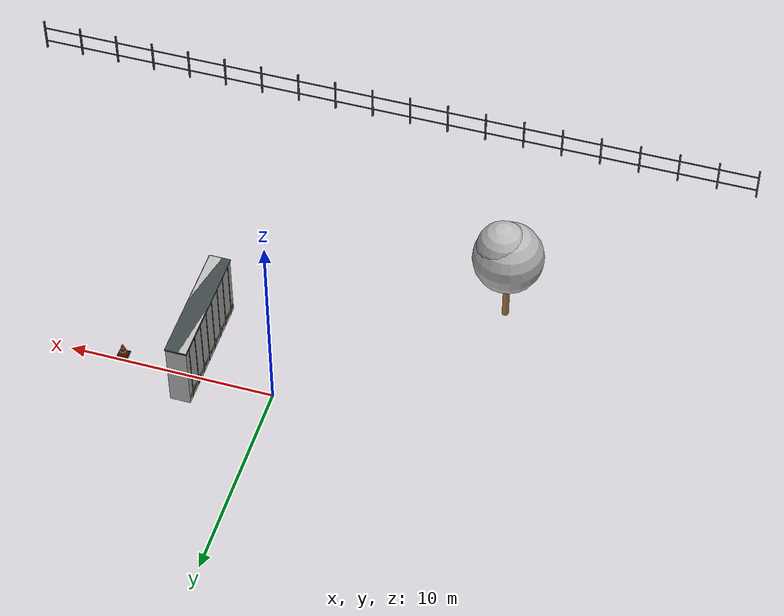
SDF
<sdf version="1.5">
 <world name="default">
  <include><uri>model://sun</uri></include>
  <model name="traffic_cone_1">
   <static>true</static>
   <pose>7.5 -0.3 0.003 0 0 0.0</pose>
   <link name="structure">
    <visual name="rubber_base">
     <pose>0 0 0.0325 0 0 0</pose>
     <geometry><box><size>0.54 0.54 0.065</size></box></geometry>
     <material>
      <ambient>0.07 0.07 0.065 1</ambient>
      <diffuse>0.07 0.07 0.065 1</diffuse>
      <specular>0.04 0.04 0.04 1</specular>
     </material>
    </visual>
    <collision name="rubber_base_collision">
     <pose>0 0 0.0325 0 0 0</pose>
     <geometry><box><size>0.54 0.54 0.065</size></box></geometry>
     <surface><friction><ode><mu>1.0</mu><mu2>1.0</mu2></ode></friction></surface>
    </collision>
    <visual name="cone_slice_0">
     <pose>0 0 0.09 0 0 0</pose>
     <geometry><cylinder><radius>0.225</radius><length>0.056</length></cylinder></geometry>
     <material>
      <ambient>0.92 0.25 0.025 1</ambient>
      <diffuse>0.92 0.25 0.025 1</diffuse>
      <specular>0.04 0.04 0.04 1</specular>
     </material>
    </visual>
    <visual name="cone_slice_1">
     <pose>0 0 0.143 0 0 0</pose>
     <geometry><cylinder><radius>0.20900000000000002</radius><length>0.056</length></cylinder></geometry>
     <material>
      <ambient>0.92 0.25 0.025 1</ambient>
      <diffuse>0.92 0.25 0.025 1</diffuse>
      <specular>0.04 0.04 0.04 1</specular>
     </material>
    </visual>
    <visual name="cone_slice_2">
     <pose>0 0 0.196 0 0 0</pose>
     <geometry><cylinder><radius>0.193</radius><length>0.056</length></cylinder></geometry>
     <material>
      <ambient>0.92 0.25 0.025 1</ambient>
      <diffuse>0.92 0.25 0.025 1</diffuse>
      <specular>0.04 0.04 0.04 1</specular>
     </material>
    </visual>
    <visual name="cone_slice_3">
     <pose>0 0 0.249 0 0 0</pose>
     <geometry><cylinder><radius>0.177</radius><length>0.056</length></cylinder></geometry>
     <material>
      <ambient>0.92 0.25 0.025 1</ambient>
      <diffuse>0.92 0.25 0.025 1</diffuse>
      <specular>0.04 0.04 0.04 1</specular>
     </material>
    </visual>
    <visual name="cone_slice_4">
     <pose>0 0 0.302 0 0 0</pose>
     <geometry><cylinder><radius>0.161</radius><length>0.056</length></cylinder></geometry>
     <material>
      <ambient>0.88 0.87 0.79 1</ambient>
      <diffuse>0.88 0.87 0.79 1</diffuse>
      <specular>0.04 0.04 0.04 1</specular>
     </material>
    </visual>
    <visual name="cone_slice_5">
     <pose>0 0 0.355 0 0 0</pose>
     <geometry><cylinder><radius>0.14500000000000002</radius><length>0.056</length></cylinder></geometry>
     <material>
      <ambient>0.88 0.87 0.79 1</ambient>
      <diffuse>0.88 0.87 0.79 1</diffuse>
      <specular>0.04 0.04 0.04 1</specular>
     </material>
    </visual>
    <visual name="cone_slice_6">
     <pose>0 0 0.408 0 0 0</pose>
     <geometry><cylinder><radius>0.129</radius><length>0.056</length></cylinder></geometry>
     <material>
      <ambient>0.92 0.25 0.025 1</ambient>
      <diffuse>0.92 0.25 0.025 1</diffuse>
      <specular>0.04 0.04 0.04 1</specular>
     </material>
    </visual>
    <visual name="cone_slice_7">
     <pose>0 0 0.461 0 0 0</pose>
     <geometry><cylinder><radius>0.113</radius><length>0.056</length></cylinder></geometry>
     <material>
      <ambient>0.92 0.25 0.025 1</ambient>
      <diffuse>0.92 0.25 0.025 1</diffuse>
      <specular>0.04 0.04 0.04 1</specular>
     </material>
    </visual>
    <visual name="cone_slice_8">
     <pose>0 0 0.514 0 0 0</pose>
     <geometry><cylinder><radius>0.097</radius><length>0.056</length></cylinder></geometry>
     <material>
      <ambient>0.88 0.87 0.79 1</ambient>
      <diffuse>0.88 0.87 0.79 1</diffuse>
      <specular>0.04 0.04 0.04 1</specular>
     </material>
    </visual>
    <visual name="cone_slice_9">
     <pose>0 0 0.567 0 0 0</pose>
     <geometry><cylinder><radius>0.08099999999999999</radius><length>0.056</length></cylinder></geometry>
     <material>
      <ambient>0.88 0.87 0.79 1</ambient>
      <diffuse>0.88 0.87 0.79 1</diffuse>
      <specular>0.04 0.04 0.04 1</specular>
     </material>
    </visual>
    <visual name="cone_slice_10">
     <pose>0 0 0.62 0 0 0</pose>
     <geometry><cylinder><radius>0.065</radius><length>0.056</length></cylinder></geometry>
     <material>
      <ambient>0.92 0.25 0.025 1</ambient>
      <diffuse>0.92 0.25 0.025 1</diffuse>
      <specular>0.04 0.04 0.04 1</specular>
     </material>
    </visual>
    <visual name="cone_slice_11">
     <pose>0 0 0.673 0 0 0</pose>
     <geometry><cylinder><radius>0.049000000000000016</radius><length>0.056</length></cylinder></geometry>
     <material>
      <ambient>0.92 0.25 0.025 1</ambient>
      <diffuse>0.92 0.25 0.025 1</diffuse>
      <specular>0.04 0.04 0.04 1</specular>
     </material>
    </visual>
    <collision name="cone_body_collision">
     <pose>0 0 .39 0 0 0</pose>
     <geometry><cylinder><radius>0.23</radius><length>0.73</length></cylinder></geometry>
    </collision>
   </link>
  </model>
  <model name="yard_tree_1">
   <static>true</static>
   <pose>-9.0 -8.0 0.003 0 0 0.0</pose>
   <link name="structure">
    <visual name="trunk">
     <pose>0 0 1.6 0 0 0</pose>
     <geometry><cylinder><radius>0.16</radius><length>3.2</length></cylinder></geometry>
     <material>
      <script>
       <uri>file:///home/fxxk/px4_agent/scene/materials/scripts</uri>
       <uri>file:///home/fxxk/px4_agent/scene/materials/textures</uri>
       <name>Yard/wood</name>
      </script>
     </material>
    </visual>
    <collision name="trunk_collision">
     <pose>0 0 1.6 0 0 0</pose>
     <geometry><cylinder><radius>0.16</radius><length>3.2</length></cylinder></geometry>
     <surface><friction><ode><mu>1.0</mu><mu2>1.0</mu2></ode></friction></surface>
    </collision>
    <visual name="crown">
     <pose>0 0 3.95 0 0 0</pose>
     <geometry><sphere><radius>1.7</radius></sphere></geometry>
     <material>
      <script>
       <uri>file:///home/fxxk/px4_agent/scene/materials/scripts</uri>
       <uri>file:///home/fxxk/px4_agent/scene/materials/textures</uri>
       <name>Yard/foliage</name>
      </script>
     </material>
    </visual>
    <collision name="crown_collision">
     <pose>0 0 3.95 0 0 0</pose>
     <geometry><sphere><radius>1.7</radius></sphere></geometry>
     <surface><friction><ode><mu>1.0</mu><mu2>1.0</mu2></ode></friction></surface>
    </collision>
    <visual name="crown_top">
     <pose>0.25 0.06 4.6 0 0 0</pose>
     <geometry><sphere><radius>1.275</radius></sphere></geometry>
     <material>
      <script>
       <uri>file:///home/fxxk/px4_agent/scene/materials/scripts</uri>
       <uri>file:///home/fxxk/px4_agent/scene/materials/textures</uri>
       <name>Yard/foliage</name>
      </script>
     </material>
    </visual>
   </link>
  </model>
  <model name="south_fence">
   <static>true</static>
   <pose>0.0 -19.0 0.003 0 0 0.0</pose>
   <link name="structure">
    <collision name="fence_collision">
     <pose>0 0 .9 0 0 0</pose>
     <geometry><box><size>38 0.12 1.8</size></box></geometry>
    </collision>
    <visual name="fence_post_0">
     <pose>-19 0 0.9 0 0 0</pose>
     <geometry><box><size>0.08 0.08 1.8</size></box></geometry>
     <material>
      <ambient>0.31 0.34 0.33 1</ambient>
      <diffuse>0.31 0.34 0.33 1</diffuse>
      <specular>0.04 0.04 0.04 1</specular>
     </material>
    </visual>
    <visual name="fence_post_1">
     <pose>-17 0 0.9 0 0 0</pose>
     <geometry><box><size>0.08 0.08 1.8</size></box></geometry>
     <material>
      <ambient>0.31 0.34 0.33 1</ambient>
      <diffuse>0.31 0.34 0.33 1</diffuse>
      <specular>0.04 0.04 0.04 1</specular>
     </material>
    </visual>
    <visual name="fence_post_2">
     <pose>-15 0 0.9 0 0 0</pose>
     <geometry><box><size>0.08 0.08 1.8</size></box></geometry>
     <material>
      <ambient>0.31 0.34 0.33 1</ambient>
      <diffuse>0.31 0.34 0.33 1</diffuse>
      <specular>0.04 0.04 0.04 1</specular>
     </material>
    </visual>
    <visual name="fence_post_3">
     <pose>-13 0 0.9 0 0 0</pose>
     <geometry><box><size>0.08 0.08 1.8</size></box></geometry>
     <material>
      <ambient>0.31 0.34 0.33 1</ambient>
      <diffuse>0.31 0.34 0.33 1</diffuse>
      <specular>0.04 0.04 0.04 1</specular>
     </material>
    </visual>
    <visual name="fence_post_4">
     <pose>-11 0 0.9 0 0 0</pose>
     <geometry><box><size>0.08 0.08 1.8</size></box></geometry>
     <material>
      <ambient>0.31 0.34 0.33 1</ambient>
      <diffuse>0.31 0.34 0.33 1</diffuse>
      <specular>0.04 0.04 0.04 1</specular>
     </material>
    </visual>
    <visual name="fence_post_5">
     <pose>-9 0 0.9 0 0 0</pose>
     <geometry><box><size>0.08 0.08 1.8</size></box></geometry>
     <material>
      <ambient>0.31 0.34 0.33 1</ambient>
      <diffuse>0.31 0.34 0.33 1</diffuse>
      <specular>0.04 0.04 0.04 1</specular>
     </material>
    </visual>
    <visual name="fence_post_6">
     <pose>-7 0 0.9 0 0 0</pose>
     <geometry><box><size>0.08 0.08 1.8</size></box></geometry>
     <material>
      <ambient>0.31 0.34 0.33 1</ambient>
      <diffuse>0.31 0.34 0.33 1</diffuse>
      <specular>0.04 0.04 0.04 1</specular>
     </material>
    </visual>
    <visual name="fence_post_7">
     <pose>-5 0 0.9 0 0 0</pose>
     <geometry><box><size>0.08 0.08 1.8</size></box></geometry>
     <material>
      <ambient>0.31 0.34 0.33 1</ambient>
      <diffuse>0.31 0.34 0.33 1</diffuse>
      <specular>0.04 0.04 0.04 1</specular>
     </material>
    </visual>
    <visual name="fence_post_8">
     <pose>-3 0 0.9 0 0 0</pose>
     <geometry><box><size>0.08 0.08 1.8</size></box></geometry>
     <material>
      <ambient>0.31 0.34 0.33 1</ambient>
      <diffuse>0.31 0.34 0.33 1</diffuse>
      <specular>0.04 0.04 0.04 1</specular>
     </material>
    </visual>
    <visual name="fence_post_9">
     <pose>-1 0 0.9 0 0 0</pose>
     <geometry><box><size>0.08 0.08 1.8</size></box></geometry>
     <material>
      <ambient>0.31 0.34 0.33 1</ambient>
      <diffuse>0.31 0.34 0.33 1</diffuse>
      <specular>0.04 0.04 0.04 1</specular>
     </material>
    </visual>
    <visual name="fence_post_10">
     <pose>1 0 0.9 0 0 0</pose>
     <geometry><box><size>0.08 0.08 1.8</size></box></geometry>
     <material>
      <ambient>0.31 0.34 0.33 1</ambient>
      <diffuse>0.31 0.34 0.33 1</diffuse>
      <specular>0.04 0.04 0.04 1</specular>
     </material>
    </visual>
    <visual name="fence_post_11">
     <pose>3 0 0.9 0 0 0</pose>
     <geometry><box><size>0.08 0.08 1.8</size></box></geometry>
     <material>
      <ambient>0.31 0.34 0.33 1</ambient>
      <diffuse>0.31 0.34 0.33 1</diffuse>
      <specular>0.04 0.04 0.04 1</specular>
     </material>
    </visual>
    <visual name="fence_post_12">
     <pose>5 0 0.9 0 0 0</pose>
     <geometry><box><size>0.08 0.08 1.8</size></box></geometry>
     <material>
      <ambient>0.31 0.34 0.33 1</ambient>
      <diffuse>0.31 0.34 0.33 1</diffuse>
      <specular>0.04 0.04 0.04 1</specular>
     </material>
    </visual>
    <visual name="fence_post_13">
     <pose>7 0 0.9 0 0 0</pose>
     <geometry><box><size>0.08 0.08 1.8</size></box></geometry>
     <material>
      <ambient>0.31 0.34 0.33 1</ambient>
      <diffuse>0.31 0.34 0.33 1</diffuse>
      <specular>0.04 0.04 0.04 1</specular>
     </material>
    </visual>
    <visual name="fence_post_14">
     <pose>9 0 0.9 0 0 0</pose>
     <geometry><box><size>0.08 0.08 1.8</size></box></geometry>
     <material>
      <ambient>0.31 0.34 0.33 1</ambient>
      <diffuse>0.31 0.34 0.33 1</diffuse>
      <specular>0.04 0.04 0.04 1</specular>
     </material>
    </visual>
    <visual name="fence_post_15">
     <pose>11 0 0.9 0 0 0</pose>
     <geometry><box><size>0.08 0.08 1.8</size></box></geometry>
     <material>
      <ambient>0.31 0.34 0.33 1</ambient>
      <diffuse>0.31 0.34 0.33 1</diffuse>
      <specular>0.04 0.04 0.04 1</specular>
     </material>
    </visual>
    <visual name="fence_post_16">
     <pose>13 0 0.9 0 0 0</pose>
     <geometry><box><size>0.08 0.08 1.8</size></box></geometry>
     <material>
      <ambient>0.31 0.34 0.33 1</ambient>
      <diffuse>0.31 0.34 0.33 1</diffuse>
      <specular>0.04 0.04 0.04 1</specular>
     </material>
    </visual>
    <visual name="fence_post_17">
     <pose>15 0 0.9 0 0 0</pose>
     <geometry><box><size>0.08 0.08 1.8</size></box></geometry>
     <material>
      <ambient>0.31 0.34 0.33 1</ambient>
      <diffuse>0.31 0.34 0.33 1</diffuse>
      <specular>0.04 0.04 0.04 1</specular>
     </material>
    </visual>
    <visual name="fence_post_18">
     <pose>17 0 0.9 0 0 0</pose>
     <geometry><box><size>0.08 0.08 1.8</size></box></geometry>
     <material>
      <ambient>0.31 0.34 0.33 1</ambient>
      <diffuse>0.31 0.34 0.33 1</diffuse>
      <specular>0.04 0.04 0.04 1</specular>
     </material>
    </visual>
    <visual name="fence_post_19">
     <pose>19 0 0.9 0 0 0</pose>
     <geometry><box><size>0.08 0.08 1.8</size></box></geometry>
     <material>
      <ambient>0.31 0.34 0.33 1</ambient>
      <diffuse>0.31 0.34 0.33 1</diffuse>
      <specular>0.04 0.04 0.04 1</specular>
     </material>
    </visual>
    <visual name="fence_rail_0">
     <pose>0 0 0.48 0 0 0</pose>
     <geometry><box><size>38 0.04 0.055</size></box></geometry>
     <material>
      <ambient>0.35 0.38 0.37 1</ambient>
      <diffuse>0.35 0.38 0.37 1</diffuse>
      <specular>0.04 0.04 0.04 1</specular>
     </material>
    </visual>
    <visual name="fence_rail_1">
     <pose>0 0 1.35 0 0 0</pose>
     <geometry><box><size>38 0.04 0.055</size></box></geometry>
     <material>
      <ambient>0.35 0.38 0.37 1</ambient>
      <diffuse>0.35 0.38 0.37 1</diffuse>
      <specular>0.04 0.04 0.04 1</specular>
     </material>
    </visual>
   </link>
  </model>
  <model name="courtyard_screen">
   <static>true</static>
   <pose>4 -1.5 0.003 0 0 0</pose>
   <link name="structure">
    <visual name="collision_wall">
     <pose>0 0 1.75 0 0 0</pose>
     <geometry><box><size>1 6 3.5</size></box></geometry>
     <material>
      <script>
       <uri>file:///home/fxxk/px4_agent/scene/materials/scripts</uri>
       <uri>file:///home/fxxk/px4_agent/scene/materials/textures</uri>
       <name>Yard/concrete</name>
      </script>
     </material>
    </visual>
    <collision name="collision_wall_collision">
     <pose>0 0 1.75 0 0 0</pose>
     <geometry><box><size>1 6 3.5</size></box></geometry>
     <surface><friction><ode><mu>1.0</mu><mu2>1.0</mu2></ode></friction></surface>
    </collision>
    <visual name="wall_coping">
     <pose>0 0 3.45863636 0 0 0</pose>
     <geometry><box><size>1.06 6.045 0.0827272727</size></box></geometry>
     <material>
      <ambient>0.24 0.27 0.28 1</ambient>
      <diffuse>0.24 0.27 0.28 1</diffuse>
      <specular>0.04 0.04 0.04 1</specular>
     </material>
    </visual>
    <visual name="panel_joint_-1_0">
     <pose>-0.513 -2.625 1.75 0 0 0</pose>
     <geometry><box><size>0.028 0.0255 3.37272727</size></box></geometry>
     <material>
      <ambient>0.26 0.29 0.29 1</ambient>
      <diffuse>0.26 0.29 0.29 1</diffuse>
      <specular>0.04 0.04 0.04 1</specular>
     </material>
    </visual>
    <visual name="panel_joint_1_0">
     <pose>0.513 -2.625 1.75 0 0 0</pose>
     <geometry><box><size>0.028 0.0255 3.37272727</size></box></geometry>
     <material>
      <ambient>0.26 0.29 0.29 1</ambient>
      <diffuse>0.26 0.29 0.29 1</diffuse>
      <specular>0.04 0.04 0.04 1</specular>
     </material>
    </visual>
    <visual name="panel_joint_-1_1">
     <pose>-0.513 -1.875 1.75 0 0 0</pose>
     <geometry><box><size>0.028 0.0255 3.37272727</size></box></geometry>
     <material>
      <ambient>0.26 0.29 0.29 1</ambient>
      <diffuse>0.26 0.29 0.29 1</diffuse>
      <specular>0.04 0.04 0.04 1</specular>
     </material>
    </visual>
    <visual name="panel_joint_1_1">
     <pose>0.513 -1.875 1.75 0 0 0</pose>
     <geometry><box><size>0.028 0.0255 3.37272727</size></box></geometry>
     <material>
      <ambient>0.26 0.29 0.29 1</ambient>
      <diffuse>0.26 0.29 0.29 1</diffuse>
      <specular>0.04 0.04 0.04 1</specular>
     </material>
    </visual>
    <visual name="panel_joint_-1_2">
     <pose>-0.513 -1.125 1.75 0 0 0</pose>
     <geometry><box><size>0.028 0.0255 3.37272727</size></box></geometry>
     <material>
      <ambient>0.26 0.29 0.29 1</ambient>
      <diffuse>0.26 0.29 0.29 1</diffuse>
      <specular>0.04 0.04 0.04 1</specular>
     </material>
    </visual>
    <visual name="panel_joint_1_2">
     <pose>0.513 -1.125 1.75 0 0 0</pose>
     <geometry><box><size>0.028 0.0255 3.37272727</size></box></geometry>
     <material>
      <ambient>0.26 0.29 0.29 1</ambient>
      <diffuse>0.26 0.29 0.29 1</diffuse>
      <specular>0.04 0.04 0.04 1</specular>
     </material>
    </visual>
    <visual name="panel_joint_-1_3">
     <pose>-0.513 -0.375 1.75 0 0 0</pose>
     <geometry><box><size>0.028 0.0255 3.37272727</size></box></geometry>
     <material>
      <ambient>0.26 0.29 0.29 1</ambient>
      <diffuse>0.26 0.29 0.29 1</diffuse>
      <specular>0.04 0.04 0.04 1</specular>
     </material>
    </visual>
    <visual name="panel_joint_1_3">
     <pose>0.513 -0.375 1.75 0 0 0</pose>
     <geometry><box><size>0.028 0.0255 3.37272727</size></box></geometry>
     <material>
      <ambient>0.26 0.29 0.29 1</ambient>
      <diffuse>0.26 0.29 0.29 1</diffuse>
      <specular>0.04 0.04 0.04 1</specular>
     </material>
    </visual>
    <visual name="panel_joint_-1_4">
     <pose>-0.513 0.375 1.75 0 0 0</pose>
     <geometry><box><size>0.028 0.0255 3.37272727</size></box></geometry>
     <material>
      <ambient>0.26 0.29 0.29 1</ambient>
      <diffuse>0.26 0.29 0.29 1</diffuse>
      <specular>0.04 0.04 0.04 1</specular>
     </material>
    </visual>
    <visual name="panel_joint_1_4">
     <pose>0.513 0.375 1.75 0 0 0</pose>
     <geometry><box><size>0.028 0.0255 3.37272727</size></box></geometry>
     <material>
      <ambient>0.26 0.29 0.29 1</ambient>
      <diffuse>0.26 0.29 0.29 1</diffuse>
      <specular>0.04 0.04 0.04 1</specular>
     </material>
    </visual>
    <visual name="panel_joint_-1_5">
     <pose>-0.513 1.125 1.75 0 0 0</pose>
     <geometry><box><size>0.028 0.0255 3.37272727</size></box></geometry>
     <material>
      <ambient>0.26 0.29 0.29 1</ambient>
      <diffuse>0.26 0.29 0.29 1</diffuse>
      <specular>0.04 0.04 0.04 1</specular>
     </material>
    </visual>
    <visual name="panel_joint_1_5">
     <pose>0.513 1.125 1.75 0 0 0</pose>
     <geometry><box><size>0.028 0.0255 3.37272727</size></box></geometry>
     <material>
      <ambient>0.26 0.29 0.29 1</ambient>
      <diffuse>0.26 0.29 0.29 1</diffuse>
      <specular>0.04 0.04 0.04 1</specular>
     </material>
    </visual>
    <visual name="panel_joint_-1_6">
     <pose>-0.513 1.875 1.75 0 0 0</pose>
     <geometry><box><size>0.028 0.0255 3.37272727</size></box></geometry>
     <material>
      <ambient>0.26 0.29 0.29 1</ambient>
      <diffuse>0.26 0.29 0.29 1</diffuse>
      <specular>0.04 0.04 0.04 1</specular>
     </material>
    </visual>
    <visual name="panel_joint_1_6">
     <pose>0.513 1.875 1.75 0 0 0</pose>
     <geometry><box><size>0.028 0.0255 3.37272727</size></box></geometry>
     <material>
      <ambient>0.26 0.29 0.29 1</ambient>
      <diffuse>0.26 0.29 0.29 1</diffuse>
      <specular>0.04 0.04 0.04 1</specular>
     </material>
    </visual>
    <visual name="panel_joint_-1_7">
     <pose>-0.513 2.625 1.75 0 0 0</pose>
     <geometry><box><size>0.028 0.0255 3.37272727</size></box></geometry>
     <material>
      <ambient>0.26 0.29 0.29 1</ambient>
      <diffuse>0.26 0.29 0.29 1</diffuse>
      <specular>0.04 0.04 0.04 1</specular>
     </material>
    </visual>
    <visual name="panel_joint_1_7">
     <pose>0.513 2.625 1.75 0 0 0</pose>
     <geometry><box><size>0.028 0.0255 3.37272727</size></box></geometry>
     <material>
      <ambient>0.26 0.29 0.29 1</ambient>
      <diffuse>0.26 0.29 0.29 1</diffuse>
      <specular>0.04 0.04 0.04 1</specular>
     </material>
    </visual>
    <visual name="safety_band_0">
     <pose>-0.517 -2.8125 0.413636364 0 0 0</pose>
     <geometry><box><size>0.025 0.255 0.178181818</size></box></geometry>
     <material>
      <ambient>0.075 0.085 0.085 1</ambient>
      <diffuse>0.075 0.085 0.085 1</diffuse>
      <specular>0.04 0.04 0.04 1</specular>
     </material>
    </visual>
    <visual name="safety_band_1">
     <pose>-0.517 -2.4375 0.413636364 0 0 0</pose>
     <geometry><box><size>0.025 0.255 0.178181818</size></box></geometry>
     <material>
      <ambient>0.78 0.64 0.1 1</ambient>
      <diffuse>0.78 0.64 0.1 1</diffuse>
      <specular>0.04 0.04 0.04 1</specular>
     </material>
    </visual>
    <visual name="safety_band_2">
     <pose>-0.517 -2.0625 0.413636364 0 0 0</pose>
     <geometry><box><size>0.025 0.255 0.178181818</size></box></geometry>
     <material>
      <ambient>0.075 0.085 0.085 1</ambient>
      <diffuse>0.075 0.085 0.085 1</diffuse>
      <specular>0.04 0.04 0.04 1</specular>
     </material>
    </visual>
    <visual name="safety_band_3">
     <pose>-0.517 -1.6875 0.413636364 0 0 0</pose>
     <geometry><box><size>0.025 0.255 0.178181818</size></box></geometry>
     <material>
      <ambient>0.78 0.64 0.1 1</ambient>
      <diffuse>0.78 0.64 0.1 1</diffuse>
      <specular>0.04 0.04 0.04 1</specular>
     </material>
    </visual>
    <visual name="safety_band_4">
     <pose>-0.517 -1.3125 0.413636364 0 0 0</pose>
     <geometry><box><size>0.025 0.255 0.178181818</size></box></geometry>
     <material>
      <ambient>0.075 0.085 0.085 1</ambient>
      <diffuse>0.075 0.085 0.085 1</diffuse>
      <specular>0.04 0.04 0.04 1</specular>
     </material>
    </visual>
    <visual name="safety_band_5">
     <pose>-0.517 -0.9375 0.413636364 0 0 0</pose>
     <geometry><box><size>0.025 0.255 0.178181818</size></box></geometry>
     <material>
      <ambient>0.78 0.64 0.1 1</ambient>
      <diffuse>0.78 0.64 0.1 1</diffuse>
      <specular>0.04 0.04 0.04 1</specular>
     </material>
    </visual>
    <visual name="safety_band_6">
     <pose>-0.517 -0.5625 0.413636364 0 0 0</pose>
     <geometry><box><size>0.025 0.255 0.178181818</size></box></geometry>
     <material>
      <ambient>0.075 0.085 0.085 1</ambient>
      <diffuse>0.075 0.085 0.085 1</diffuse>
      <specular>0.04 0.04 0.04 1</specular>
     </material>
    </visual>
    <visual name="safety_band_7">
     <pose>-0.517 -0.1875 0.413636364 0 0 0</pose>
     <geometry><box><size>0.025 0.255 0.178181818</size></box></geometry>
     <material>
      <ambient>0.78 0.64 0.1 1</ambient>
      <diffuse>0.78 0.64 0.1 1</diffuse>
      <specular>0.04 0.04 0.04 1</specular>
     </material>
    </visual>
    <visual name="safety_band_8">
     <pose>-0.517 0.1875 0.413636364 0 0 0</pose>
     <geometry><box><size>0.025 0.255 0.178181818</size></box></geometry>
     <material>
      <ambient>0.075 0.085 0.085 1</ambient>
      <diffuse>0.075 0.085 0.085 1</diffuse>
      <specular>0.04 0.04 0.04 1</specular>
     </material>
    </visual>
    <visual name="safety_band_9">
     <pose>-0.517 0.5625 0.413636364 0 0 0</pose>
     <geometry><box><size>0.025 0.255 0.178181818</size></box></geometry>
     <material>
      <ambient>0.78 0.64 0.1 1</ambient>
      <diffuse>0.78 0.64 0.1 1</diffuse>
      <specular>0.04 0.04 0.04 1</specular>
     </material>
    </visual>
    <visual name="safety_band_10">
     <pose>-0.517 0.9375 0.413636364 0 0 0</pose>
     <geometry><box><size>0.025 0.255 0.178181818</size></box></geometry>
     <material>
      <ambient>0.075 0.085 0.085 1</ambient>
      <diffuse>0.075 0.085 0.085 1</diffuse>
      <specular>0.04 0.04 0.04 1</specular>
     </material>
    </visual>
    <visual name="safety_band_11">
     <pose>-0.517 1.3125 0.413636364 0 0 0</pose>
     <geometry><box><size>0.025 0.255 0.178181818</size></box></geometry>
     <material>
      <ambient>0.78 0.64 0.1 1</ambient>
      <diffuse>0.78 0.64 0.1 1</diffuse>
      <specular>0.04 0.04 0.04 1</specular>
     </material>
    </visual>
    <visual name="safety_band_12">
     <pose>-0.517 1.6875 0.413636364 0 0 0</pose>
     <geometry><box><size>0.025 0.255 0.178181818</size></box></geometry>
     <material>
      <ambient>0.075 0.085 0.085 1</ambient>
      <diffuse>0.075 0.085 0.085 1</diffuse>
      <specular>0.04 0.04 0.04 1</specular>
     </material>
    </visual>
    <visual name="safety_band_13">
     <pose>-0.517 2.0625 0.413636364 0 0 0</pose>
     <geometry><box><size>0.025 0.255 0.178181818</size></box></geometry>
     <material>
      <ambient>0.78 0.64 0.1 1</ambient>
      <diffuse>0.78 0.64 0.1 1</diffuse>
      <specular>0.04 0.04 0.04 1</specular>
     </material>
    </visual>
    <visual name="safety_band_14">
     <pose>-0.517 2.4375 0.413636364 0 0 0</pose>
     <geometry><box><size>0.025 0.255 0.178181818</size></box></geometry>
     <material>
      <ambient>0.075 0.085 0.085 1</ambient>
      <diffuse>0.075 0.085 0.085 1</diffuse>
      <specular>0.04 0.04 0.04 1</specular>
     </material>
    </visual>
    <visual name="safety_band_15">
     <pose>-0.517 2.8125 0.413636364 0 0 0</pose>
     <geometry><box><size>0.025 0.255 0.178181818</size></box></geometry>
     <material>
      <ambient>0.78 0.64 0.1 1</ambient>
      <diffuse>0.78 0.64 0.1 1</diffuse>
      <specular>0.04 0.04 0.04 1</specular>
     </material>
    </visual>
   </link>
  </model>
 </world>
</sdf>
